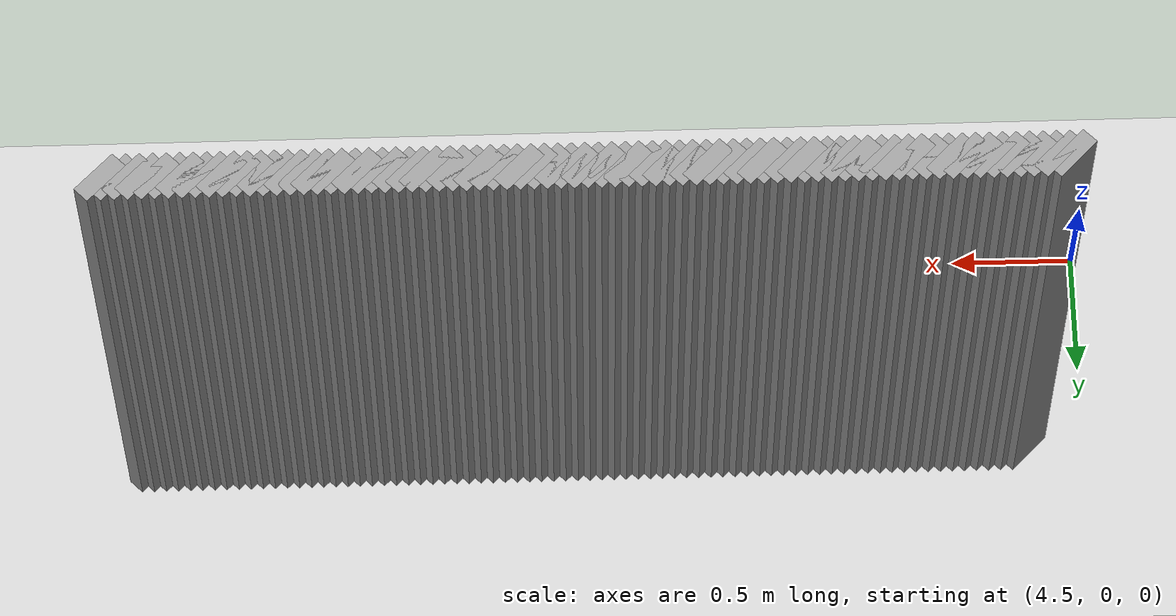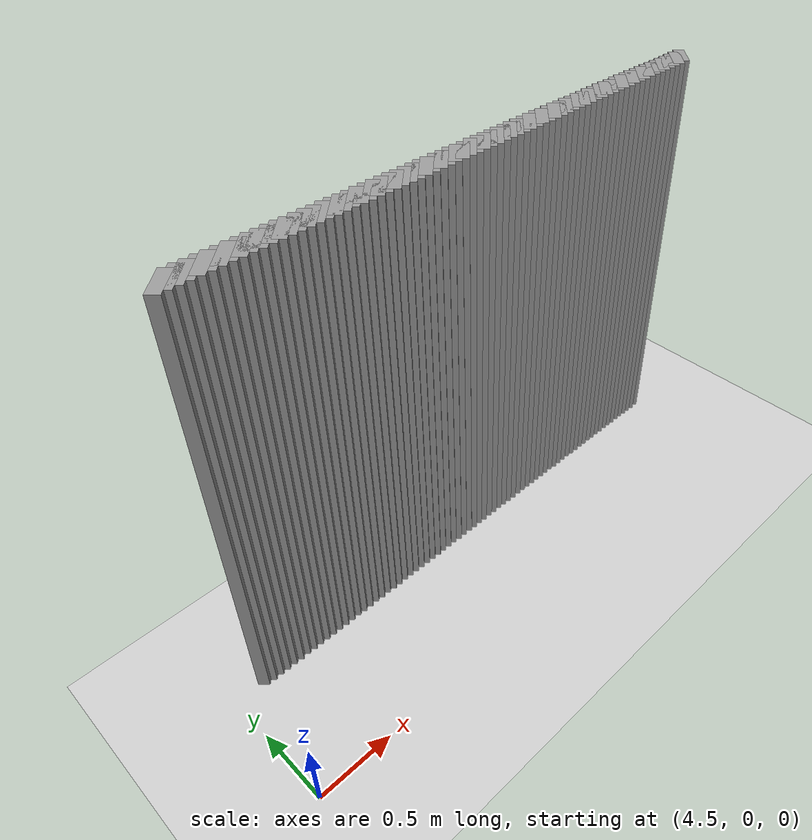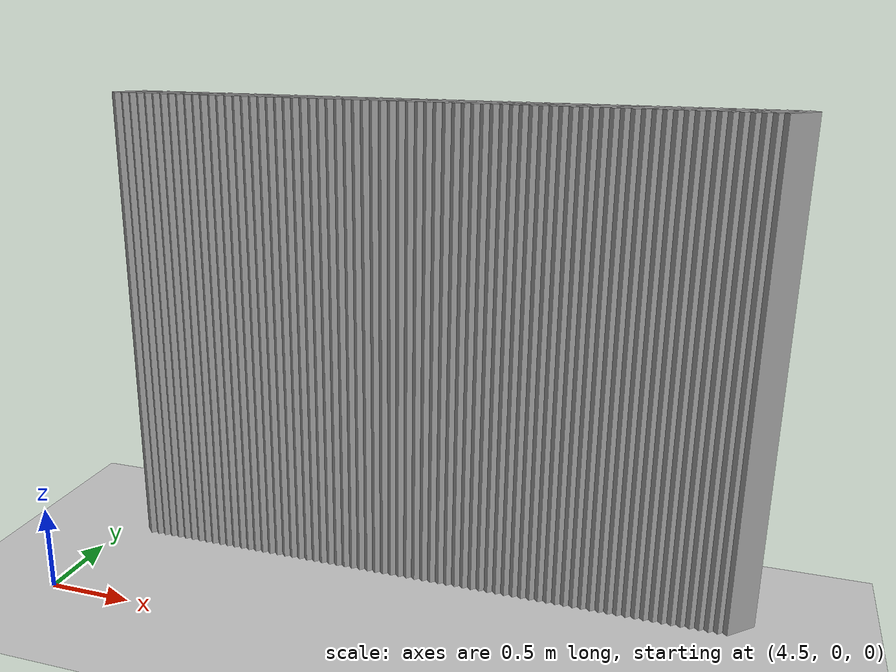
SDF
<sdf version="1.5">
 <world name="default">
  <include><uri>model://ground_plane</uri></include>
  <include><uri>model://sun</uri></include>
  <model name="grey_wall_2663">
   <static>1</static>
   <link name="link">
    <pose>4.75 0.8500000000000001  1.4 0 0 -0.7853981633974416</pose>
    <collision name="collision">
     <geometry><box><size>0.07071067811865529 .2  2.8</size></box></geometry>
    </collision>
    <visual name="visual">
     <cast_shadows>0</cast_shadows>
     <geometry><box><size>0.07071067811865529 .2  2.8</size></box></geometry>
     <material>
      <script>
       <uri>model://grey_wall/materials/scripts</uri>
       <uri>model://grey_wall/materials/textures</uri>
       <name>vrc/grey_wall</name>
      </script>
     </material>
    </visual>
   </link>
  </model>
  <model name="grey_wall_2664">
   <static>1</static>
   <link name="link">
    <pose>4.800000000000001 0.8500000000000001  1.4 0 0 -0.7853981633974416</pose>
    <collision name="collision">
     <geometry><box><size>0.07071067811865529 .2  2.8</size></box></geometry>
    </collision>
    <visual name="visual">
     <cast_shadows>0</cast_shadows>
     <geometry><box><size>0.07071067811865529 .2  2.8</size></box></geometry>
     <material>
      <script>
       <uri>model://grey_wall/materials/scripts</uri>
       <uri>model://grey_wall/materials/textures</uri>
       <name>vrc/grey_wall</name>
      </script>
     </material>
    </visual>
   </link>
  </model>
  <model name="grey_wall_2665">
   <static>1</static>
   <link name="link">
    <pose>4.8500000000000005 0.8500000000000001  1.4 0 0 -0.7853981633974416</pose>
    <collision name="collision">
     <geometry><box><size>0.07071067811865529 .2  2.8</size></box></geometry>
    </collision>
    <visual name="visual">
     <cast_shadows>0</cast_shadows>
     <geometry><box><size>0.07071067811865529 .2  2.8</size></box></geometry>
     <material>
      <script>
       <uri>model://grey_wall/materials/scripts</uri>
       <uri>model://grey_wall/materials/textures</uri>
       <name>vrc/grey_wall</name>
      </script>
     </material>
    </visual>
   </link>
  </model>
  <model name="grey_wall_2666">
   <static>1</static>
   <link name="link">
    <pose>4.9 0.8500000000000001  1.4 0 0 -0.7853981633974416</pose>
    <collision name="collision">
     <geometry><box><size>0.07071067811865529 .2  2.8</size></box></geometry>
    </collision>
    <visual name="visual">
     <cast_shadows>0</cast_shadows>
     <geometry><box><size>0.07071067811865529 .2  2.8</size></box></geometry>
     <material>
      <script>
       <uri>model://grey_wall/materials/scripts</uri>
       <uri>model://grey_wall/materials/textures</uri>
       <name>vrc/grey_wall</name>
      </script>
     </material>
    </visual>
   </link>
  </model>
  <model name="grey_wall_2667">
   <static>1</static>
   <link name="link">
    <pose>4.95 0.8500000000000001  1.4 0 0 -0.7853981633974416</pose>
    <collision name="collision">
     <geometry><box><size>0.07071067811865529 .2  2.8</size></box></geometry>
    </collision>
    <visual name="visual">
     <cast_shadows>0</cast_shadows>
     <geometry><box><size>0.07071067811865529 .2  2.8</size></box></geometry>
     <material>
      <script>
       <uri>model://grey_wall/materials/scripts</uri>
       <uri>model://grey_wall/materials/textures</uri>
       <name>vrc/grey_wall</name>
      </script>
     </material>
    </visual>
   </link>
  </model>
  <model name="grey_wall_2668">
   <static>1</static>
   <link name="link">
    <pose>5.0 0.8500000000000001  1.4 0 0 -0.7853981633974416</pose>
    <collision name="collision">
     <geometry><box><size>0.07071067811865529 .2  2.8</size></box></geometry>
    </collision>
    <visual name="visual">
     <cast_shadows>0</cast_shadows>
     <geometry><box><size>0.07071067811865529 .2  2.8</size></box></geometry>
     <material>
      <script>
       <uri>model://grey_wall/materials/scripts</uri>
       <uri>model://grey_wall/materials/textures</uri>
       <name>vrc/grey_wall</name>
      </script>
     </material>
    </visual>
   </link>
  </model>
  <model name="grey_wall_2669">
   <static>1</static>
   <link name="link">
    <pose>5.050000000000001 0.8500000000000001  1.4 0 0 -0.7853981633974416</pose>
    <collision name="collision">
     <geometry><box><size>0.07071067811865529 .2  2.8</size></box></geometry>
    </collision>
    <visual name="visual">
     <cast_shadows>0</cast_shadows>
     <geometry><box><size>0.07071067811865529 .2  2.8</size></box></geometry>
     <material>
      <script>
       <uri>model://grey_wall/materials/scripts</uri>
       <uri>model://grey_wall/materials/textures</uri>
       <name>vrc/grey_wall</name>
      </script>
     </material>
    </visual>
   </link>
  </model>
  <model name="grey_wall_2670">
   <static>1</static>
   <link name="link">
    <pose>5.1000000000000005 0.8500000000000001  1.4 0 0 -0.7853981633974416</pose>
    <collision name="collision">
     <geometry><box><size>0.07071067811865529 .2  2.8</size></box></geometry>
    </collision>
    <visual name="visual">
     <cast_shadows>0</cast_shadows>
     <geometry><box><size>0.07071067811865529 .2  2.8</size></box></geometry>
     <material>
      <script>
       <uri>model://grey_wall/materials/scripts</uri>
       <uri>model://grey_wall/materials/textures</uri>
       <name>vrc/grey_wall</name>
      </script>
     </material>
    </visual>
   </link>
  </model>
  <model name="grey_wall_2671">
   <static>1</static>
   <link name="link">
    <pose>5.15 0.8500000000000001  1.4 0 0 -0.7853981633974416</pose>
    <collision name="collision">
     <geometry><box><size>0.07071067811865529 .2  2.8</size></box></geometry>
    </collision>
    <visual name="visual">
     <cast_shadows>0</cast_shadows>
     <geometry><box><size>0.07071067811865529 .2  2.8</size></box></geometry>
     <material>
      <script>
       <uri>model://grey_wall/materials/scripts</uri>
       <uri>model://grey_wall/materials/textures</uri>
       <name>vrc/grey_wall</name>
      </script>
     </material>
    </visual>
   </link>
  </model>
  <model name="grey_wall_2672">
   <static>1</static>
   <link name="link">
    <pose>5.2 0.8500000000000001  1.4 0 0 -0.7853981633974416</pose>
    <collision name="collision">
     <geometry><box><size>0.07071067811865529 .2  2.8</size></box></geometry>
    </collision>
    <visual name="visual">
     <cast_shadows>0</cast_shadows>
     <geometry><box><size>0.07071067811865529 .2  2.8</size></box></geometry>
     <material>
      <script>
       <uri>model://grey_wall/materials/scripts</uri>
       <uri>model://grey_wall/materials/textures</uri>
       <name>vrc/grey_wall</name>
      </script>
     </material>
    </visual>
   </link>
  </model>
  <model name="grey_wall_2673">
   <static>1</static>
   <link name="link">
    <pose>5.25 0.8500000000000001  1.4 0 0 -0.7853981633974416</pose>
    <collision name="collision">
     <geometry><box><size>0.07071067811865529 .2  2.8</size></box></geometry>
    </collision>
    <visual name="visual">
     <cast_shadows>0</cast_shadows>
     <geometry><box><size>0.07071067811865529 .2  2.8</size></box></geometry>
     <material>
      <script>
       <uri>model://grey_wall/materials/scripts</uri>
       <uri>model://grey_wall/materials/textures</uri>
       <name>vrc/grey_wall</name>
      </script>
     </material>
    </visual>
   </link>
  </model>
  <model name="grey_wall_2674">
   <static>1</static>
   <link name="link">
    <pose>5.300000000000001 0.8500000000000001  1.4 0 0 -0.7853981633974416</pose>
    <collision name="collision">
     <geometry><box><size>0.07071067811865529 .2  2.8</size></box></geometry>
    </collision>
    <visual name="visual">
     <cast_shadows>0</cast_shadows>
     <geometry><box><size>0.07071067811865529 .2  2.8</size></box></geometry>
     <material>
      <script>
       <uri>model://grey_wall/materials/scripts</uri>
       <uri>model://grey_wall/materials/textures</uri>
       <name>vrc/grey_wall</name>
      </script>
     </material>
    </visual>
   </link>
  </model>
  <model name="grey_wall_2675">
   <static>1</static>
   <link name="link">
    <pose>5.3500000000000005 0.8500000000000001  1.4 0 0 -0.7853981633974416</pose>
    <collision name="collision">
     <geometry><box><size>0.07071067811865529 .2  2.8</size></box></geometry>
    </collision>
    <visual name="visual">
     <cast_shadows>0</cast_shadows>
     <geometry><box><size>0.07071067811865529 .2  2.8</size></box></geometry>
     <material>
      <script>
       <uri>model://grey_wall/materials/scripts</uri>
       <uri>model://grey_wall/materials/textures</uri>
       <name>vrc/grey_wall</name>
      </script>
     </material>
    </visual>
   </link>
  </model>
  <model name="grey_wall_2676">
   <static>1</static>
   <link name="link">
    <pose>5.4 0.8500000000000001  1.4 0 0 -0.7853981633974416</pose>
    <collision name="collision">
     <geometry><box><size>0.07071067811865529 .2  2.8</size></box></geometry>
    </collision>
    <visual name="visual">
     <cast_shadows>0</cast_shadows>
     <geometry><box><size>0.07071067811865529 .2  2.8</size></box></geometry>
     <material>
      <script>
       <uri>model://grey_wall/materials/scripts</uri>
       <uri>model://grey_wall/materials/textures</uri>
       <name>vrc/grey_wall</name>
      </script>
     </material>
    </visual>
   </link>
  </model>
  <model name="grey_wall_2677">
   <static>1</static>
   <link name="link">
    <pose>5.45 0.8500000000000001  1.4 0 0 -0.7853981633974416</pose>
    <collision name="collision">
     <geometry><box><size>0.07071067811865529 .2  2.8</size></box></geometry>
    </collision>
    <visual name="visual">
     <cast_shadows>0</cast_shadows>
     <geometry><box><size>0.07071067811865529 .2  2.8</size></box></geometry>
     <material>
      <script>
       <uri>model://grey_wall/materials/scripts</uri>
       <uri>model://grey_wall/materials/textures</uri>
       <name>vrc/grey_wall</name>
      </script>
     </material>
    </visual>
   </link>
  </model>
  <model name="grey_wall_2678">
   <static>1</static>
   <link name="link">
    <pose>5.5 0.8500000000000001  1.4 0 0 -0.7853981633974416</pose>
    <collision name="collision">
     <geometry><box><size>0.07071067811865529 .2  2.8</size></box></geometry>
    </collision>
    <visual name="visual">
     <cast_shadows>0</cast_shadows>
     <geometry><box><size>0.07071067811865529 .2  2.8</size></box></geometry>
     <material>
      <script>
       <uri>model://grey_wall/materials/scripts</uri>
       <uri>model://grey_wall/materials/textures</uri>
       <name>vrc/grey_wall</name>
      </script>
     </material>
    </visual>
   </link>
  </model>
  <model name="grey_wall_2679">
   <static>1</static>
   <link name="link">
    <pose>5.550000000000001 0.8500000000000001  1.4 0 0 -0.7853981633974416</pose>
    <collision name="collision">
     <geometry><box><size>0.07071067811865529 .2  2.8</size></box></geometry>
    </collision>
    <visual name="visual">
     <cast_shadows>0</cast_shadows>
     <geometry><box><size>0.07071067811865529 .2  2.8</size></box></geometry>
     <material>
      <script>
       <uri>model://grey_wall/materials/scripts</uri>
       <uri>model://grey_wall/materials/textures</uri>
       <name>vrc/grey_wall</name>
      </script>
     </material>
    </visual>
   </link>
  </model>
  <model name="grey_wall_2680">
   <static>1</static>
   <link name="link">
    <pose>5.6000000000000005 0.8500000000000001  1.4 0 0 -0.7853981633974416</pose>
    <collision name="collision">
     <geometry><box><size>0.07071067811865529 .2  2.8</size></box></geometry>
    </collision>
    <visual name="visual">
     <cast_shadows>0</cast_shadows>
     <geometry><box><size>0.07071067811865529 .2  2.8</size></box></geometry>
     <material>
      <script>
       <uri>model://grey_wall/materials/scripts</uri>
       <uri>model://grey_wall/materials/textures</uri>
       <name>vrc/grey_wall</name>
      </script>
     </material>
    </visual>
   </link>
  </model>
  <model name="grey_wall_2681">
   <static>1</static>
   <link name="link">
    <pose>5.65 0.8500000000000001  1.4 0 0 -0.7853981633974416</pose>
    <collision name="collision">
     <geometry><box><size>0.07071067811865529 .2  2.8</size></box></geometry>
    </collision>
    <visual name="visual">
     <cast_shadows>0</cast_shadows>
     <geometry><box><size>0.07071067811865529 .2  2.8</size></box></geometry>
     <material>
      <script>
       <uri>model://grey_wall/materials/scripts</uri>
       <uri>model://grey_wall/materials/textures</uri>
       <name>vrc/grey_wall</name>
      </script>
     </material>
    </visual>
   </link>
  </model>
  <model name="grey_wall_2682">
   <static>1</static>
   <link name="link">
    <pose>5.7 0.8500000000000001  1.4 0 0 -0.7853981633974416</pose>
    <collision name="collision">
     <geometry><box><size>0.07071067811865529 .2  2.8</size></box></geometry>
    </collision>
    <visual name="visual">
     <cast_shadows>0</cast_shadows>
     <geometry><box><size>0.07071067811865529 .2  2.8</size></box></geometry>
     <material>
      <script>
       <uri>model://grey_wall/materials/scripts</uri>
       <uri>model://grey_wall/materials/textures</uri>
       <name>vrc/grey_wall</name>
      </script>
     </material>
    </visual>
   </link>
  </model>
  <model name="grey_wall_2683">
   <static>1</static>
   <link name="link">
    <pose>5.75 0.8500000000000001  1.4 0 0 -0.7853981633974416</pose>
    <collision name="collision">
     <geometry><box><size>0.07071067811865529 .2  2.8</size></box></geometry>
    </collision>
    <visual name="visual">
     <cast_shadows>0</cast_shadows>
     <geometry><box><size>0.07071067811865529 .2  2.8</size></box></geometry>
     <material>
      <script>
       <uri>model://grey_wall/materials/scripts</uri>
       <uri>model://grey_wall/materials/textures</uri>
       <name>vrc/grey_wall</name>
      </script>
     </material>
    </visual>
   </link>
  </model>
  <model name="grey_wall_2684">
   <static>1</static>
   <link name="link">
    <pose>5.800000000000001 0.8500000000000001  1.4 0 0 -0.7853981633974416</pose>
    <collision name="collision">
     <geometry><box><size>0.07071067811865529 .2  2.8</size></box></geometry>
    </collision>
    <visual name="visual">
     <cast_shadows>0</cast_shadows>
     <geometry><box><size>0.07071067811865529 .2  2.8</size></box></geometry>
     <material>
      <script>
       <uri>model://grey_wall/materials/scripts</uri>
       <uri>model://grey_wall/materials/textures</uri>
       <name>vrc/grey_wall</name>
      </script>
     </material>
    </visual>
   </link>
  </model>
  <model name="grey_wall_2685">
   <static>1</static>
   <link name="link">
    <pose>5.8500000000000005 0.8500000000000001  1.4 0 0 -0.7853981633974416</pose>
    <collision name="collision">
     <geometry><box><size>0.07071067811865529 .2  2.8</size></box></geometry>
    </collision>
    <visual name="visual">
     <cast_shadows>0</cast_shadows>
     <geometry><box><size>0.07071067811865529 .2  2.8</size></box></geometry>
     <material>
      <script>
       <uri>model://grey_wall/materials/scripts</uri>
       <uri>model://grey_wall/materials/textures</uri>
       <name>vrc/grey_wall</name>
      </script>
     </material>
    </visual>
   </link>
  </model>
  <model name="grey_wall_2686">
   <static>1</static>
   <link name="link">
    <pose>5.9 0.8500000000000001  1.4 0 0 -0.7853981633974416</pose>
    <collision name="collision">
     <geometry><box><size>0.07071067811865529 .2  2.8</size></box></geometry>
    </collision>
    <visual name="visual">
     <cast_shadows>0</cast_shadows>
     <geometry><box><size>0.07071067811865529 .2  2.8</size></box></geometry>
     <material>
      <script>
       <uri>model://grey_wall/materials/scripts</uri>
       <uri>model://grey_wall/materials/textures</uri>
       <name>vrc/grey_wall</name>
      </script>
     </material>
    </visual>
   </link>
  </model>
  <model name="grey_wall_2687">
   <static>1</static>
   <link name="link">
    <pose>5.95 0.8500000000000001  1.4 0 0 -0.7853981633974416</pose>
    <collision name="collision">
     <geometry><box><size>0.07071067811865529 .2  2.8</size></box></geometry>
    </collision>
    <visual name="visual">
     <cast_shadows>0</cast_shadows>
     <geometry><box><size>0.07071067811865529 .2  2.8</size></box></geometry>
     <material>
      <script>
       <uri>model://grey_wall/materials/scripts</uri>
       <uri>model://grey_wall/materials/textures</uri>
       <name>vrc/grey_wall</name>
      </script>
     </material>
    </visual>
   </link>
  </model>
  <model name="grey_wall_2688">
   <static>1</static>
   <link name="link">
    <pose>6.0 0.8500000000000001  1.4 0 0 -0.7853981633974416</pose>
    <collision name="collision">
     <geometry><box><size>0.07071067811865529 .2  2.8</size></box></geometry>
    </collision>
    <visual name="visual">
     <cast_shadows>0</cast_shadows>
     <geometry><box><size>0.07071067811865529 .2  2.8</size></box></geometry>
     <material>
      <script>
       <uri>model://grey_wall/materials/scripts</uri>
       <uri>model://grey_wall/materials/textures</uri>
       <name>vrc/grey_wall</name>
      </script>
     </material>
    </visual>
   </link>
  </model>
  <model name="grey_wall_2689">
   <static>1</static>
   <link name="link">
    <pose>6.050000000000001 0.8500000000000001  1.4 0 0 -0.7853981633974416</pose>
    <collision name="collision">
     <geometry><box><size>0.07071067811865529 .2  2.8</size></box></geometry>
    </collision>
    <visual name="visual">
     <cast_shadows>0</cast_shadows>
     <geometry><box><size>0.07071067811865529 .2  2.8</size></box></geometry>
     <material>
      <script>
       <uri>model://grey_wall/materials/scripts</uri>
       <uri>model://grey_wall/materials/textures</uri>
       <name>vrc/grey_wall</name>
      </script>
     </material>
    </visual>
   </link>
  </model>
  <model name="grey_wall_2690">
   <static>1</static>
   <link name="link">
    <pose>6.1000000000000005 0.8500000000000001  1.4 0 0 -0.7853981633974416</pose>
    <collision name="collision">
     <geometry><box><size>0.07071067811865529 .2  2.8</size></box></geometry>
    </collision>
    <visual name="visual">
     <cast_shadows>0</cast_shadows>
     <geometry><box><size>0.07071067811865529 .2  2.8</size></box></geometry>
     <material>
      <script>
       <uri>model://grey_wall/materials/scripts</uri>
       <uri>model://grey_wall/materials/textures</uri>
       <name>vrc/grey_wall</name>
      </script>
     </material>
    </visual>
   </link>
  </model>
  <model name="grey_wall_2691">
   <static>1</static>
   <link name="link">
    <pose>6.15 0.8500000000000001  1.4 0 0 -0.7853981633974416</pose>
    <collision name="collision">
     <geometry><box><size>0.07071067811865529 .2  2.8</size></box></geometry>
    </collision>
    <visual name="visual">
     <cast_shadows>0</cast_shadows>
     <geometry><box><size>0.07071067811865529 .2  2.8</size></box></geometry>
     <material>
      <script>
       <uri>model://grey_wall/materials/scripts</uri>
       <uri>model://grey_wall/materials/textures</uri>
       <name>vrc/grey_wall</name>
      </script>
     </material>
    </visual>
   </link>
  </model>
  <model name="grey_wall_2692">
   <static>1</static>
   <link name="link">
    <pose>6.2 0.8500000000000001  1.4 0 0 -0.7853981633974416</pose>
    <collision name="collision">
     <geometry><box><size>0.07071067811865529 .2  2.8</size></box></geometry>
    </collision>
    <visual name="visual">
     <cast_shadows>0</cast_shadows>
     <geometry><box><size>0.07071067811865529 .2  2.8</size></box></geometry>
     <material>
      <script>
       <uri>model://grey_wall/materials/scripts</uri>
       <uri>model://grey_wall/materials/textures</uri>
       <name>vrc/grey_wall</name>
      </script>
     </material>
    </visual>
   </link>
  </model>
  <model name="grey_wall_2693">
   <static>1</static>
   <link name="link">
    <pose>6.25 0.8500000000000001  1.4 0 0 -0.7853981633974416</pose>
    <collision name="collision">
     <geometry><box><size>0.07071067811865529 .2  2.8</size></box></geometry>
    </collision>
    <visual name="visual">
     <cast_shadows>0</cast_shadows>
     <geometry><box><size>0.07071067811865529 .2  2.8</size></box></geometry>
     <material>
      <script>
       <uri>model://grey_wall/materials/scripts</uri>
       <uri>model://grey_wall/materials/textures</uri>
       <name>vrc/grey_wall</name>
      </script>
     </material>
    </visual>
   </link>
  </model>
  <model name="grey_wall_2694">
   <static>1</static>
   <link name="link">
    <pose>6.300000000000001 0.8500000000000001  1.4 0 0 -0.7853981633974416</pose>
    <collision name="collision">
     <geometry><box><size>0.07071067811865529 .2  2.8</size></box></geometry>
    </collision>
    <visual name="visual">
     <cast_shadows>0</cast_shadows>
     <geometry><box><size>0.07071067811865529 .2  2.8</size></box></geometry>
     <material>
      <script>
       <uri>model://grey_wall/materials/scripts</uri>
       <uri>model://grey_wall/materials/textures</uri>
       <name>vrc/grey_wall</name>
      </script>
     </material>
    </visual>
   </link>
  </model>
  <model name="grey_wall_2695">
   <static>1</static>
   <link name="link">
    <pose>6.3500000000000005 0.8500000000000001  1.4 0 0 -0.7853981633974416</pose>
    <collision name="collision">
     <geometry><box><size>0.07071067811865529 .2  2.8</size></box></geometry>
    </collision>
    <visual name="visual">
     <cast_shadows>0</cast_shadows>
     <geometry><box><size>0.07071067811865529 .2  2.8</size></box></geometry>
     <material>
      <script>
       <uri>model://grey_wall/materials/scripts</uri>
       <uri>model://grey_wall/materials/textures</uri>
       <name>vrc/grey_wall</name>
      </script>
     </material>
    </visual>
   </link>
  </model>
  <model name="grey_wall_2696">
   <static>1</static>
   <link name="link">
    <pose>6.4 0.8500000000000001  1.4 0 0 -0.7853981633974416</pose>
    <collision name="collision">
     <geometry><box><size>0.07071067811865529 .2  2.8</size></box></geometry>
    </collision>
    <visual name="visual">
     <cast_shadows>0</cast_shadows>
     <geometry><box><size>0.07071067811865529 .2  2.8</size></box></geometry>
     <material>
      <script>
       <uri>model://grey_wall/materials/scripts</uri>
       <uri>model://grey_wall/materials/textures</uri>
       <name>vrc/grey_wall</name>
      </script>
     </material>
    </visual>
   </link>
  </model>
  <model name="grey_wall_2697">
   <static>1</static>
   <link name="link">
    <pose>6.45 0.8500000000000001  1.4 0 0 -0.7853981633974416</pose>
    <collision name="collision">
     <geometry><box><size>0.07071067811865529 .2  2.8</size></box></geometry>
    </collision>
    <visual name="visual">
     <cast_shadows>0</cast_shadows>
     <geometry><box><size>0.07071067811865529 .2  2.8</size></box></geometry>
     <material>
      <script>
       <uri>model://grey_wall/materials/scripts</uri>
       <uri>model://grey_wall/materials/textures</uri>
       <name>vrc/grey_wall</name>
      </script>
     </material>
    </visual>
   </link>
  </model>
  <model name="grey_wall_2698">
   <static>1</static>
   <link name="link">
    <pose>6.5 0.8500000000000001  1.4 0 0 -0.7853981633974416</pose>
    <collision name="collision">
     <geometry><box><size>0.07071067811865529 .2  2.8</size></box></geometry>
    </collision>
    <visual name="visual">
     <cast_shadows>0</cast_shadows>
     <geometry><box><size>0.07071067811865529 .2  2.8</size></box></geometry>
     <material>
      <script>
       <uri>model://grey_wall/materials/scripts</uri>
       <uri>model://grey_wall/materials/textures</uri>
       <name>vrc/grey_wall</name>
      </script>
     </material>
    </visual>
   </link>
  </model>
  <model name="grey_wall_2699">
   <static>1</static>
   <link name="link">
    <pose>6.550000000000001 0.8500000000000001  1.4 0 0 -0.7853981633974416</pose>
    <collision name="collision">
     <geometry><box><size>0.07071067811865529 .2  2.8</size></box></geometry>
    </collision>
    <visual name="visual">
     <cast_shadows>0</cast_shadows>
     <geometry><box><size>0.07071067811865529 .2  2.8</size></box></geometry>
     <material>
      <script>
       <uri>model://grey_wall/materials/scripts</uri>
       <uri>model://grey_wall/materials/textures</uri>
       <name>vrc/grey_wall</name>
      </script>
     </material>
    </visual>
   </link>
  </model>
  <model name="grey_wall_2700">
   <static>1</static>
   <link name="link">
    <pose>6.6000000000000005 0.8500000000000001  1.4 0 0 -0.7853981633974416</pose>
    <collision name="collision">
     <geometry><box><size>0.07071067811865529 .2  2.8</size></box></geometry>
    </collision>
    <visual name="visual">
     <cast_shadows>0</cast_shadows>
     <geometry><box><size>0.07071067811865529 .2  2.8</size></box></geometry>
     <material>
      <script>
       <uri>model://grey_wall/materials/scripts</uri>
       <uri>model://grey_wall/materials/textures</uri>
       <name>vrc/grey_wall</name>
      </script>
     </material>
    </visual>
   </link>
  </model>
  <model name="grey_wall_2701">
   <static>1</static>
   <link name="link">
    <pose>6.65 0.8500000000000001  1.4 0 0 -0.7853981633974416</pose>
    <collision name="collision">
     <geometry><box><size>0.07071067811865529 .2  2.8</size></box></geometry>
    </collision>
    <visual name="visual">
     <cast_shadows>0</cast_shadows>
     <geometry><box><size>0.07071067811865529 .2  2.8</size></box></geometry>
     <material>
      <script>
       <uri>model://grey_wall/materials/scripts</uri>
       <uri>model://grey_wall/materials/textures</uri>
       <name>vrc/grey_wall</name>
      </script>
     </material>
    </visual>
   </link>
  </model>
  <model name="grey_wall_2702">
   <static>1</static>
   <link name="link">
    <pose>6.7 0.8500000000000001  1.4 0 0 -0.7853981633974416</pose>
    <collision name="collision">
     <geometry><box><size>0.07071067811865529 .2  2.8</size></box></geometry>
    </collision>
    <visual name="visual">
     <cast_shadows>0</cast_shadows>
     <geometry><box><size>0.07071067811865529 .2  2.8</size></box></geometry>
     <material>
      <script>
       <uri>model://grey_wall/materials/scripts</uri>
       <uri>model://grey_wall/materials/textures</uri>
       <name>vrc/grey_wall</name>
      </script>
     </material>
    </visual>
   </link>
  </model>
  <model name="grey_wall_2703">
   <static>1</static>
   <link name="link">
    <pose>6.75 0.8500000000000001  1.4 0 0 -0.7853981633974416</pose>
    <collision name="collision">
     <geometry><box><size>0.07071067811865529 .2  2.8</size></box></geometry>
    </collision>
    <visual name="visual">
     <cast_shadows>0</cast_shadows>
     <geometry><box><size>0.07071067811865529 .2  2.8</size></box></geometry>
     <material>
      <script>
       <uri>model://grey_wall/materials/scripts</uri>
       <uri>model://grey_wall/materials/textures</uri>
       <name>vrc/grey_wall</name>
      </script>
     </material>
    </visual>
   </link>
  </model>
  <model name="grey_wall_2704">
   <static>1</static>
   <link name="link">
    <pose>6.800000000000001 0.8500000000000001  1.4 0 0 -0.7853981633974416</pose>
    <collision name="collision">
     <geometry><box><size>0.07071067811865529 .2  2.8</size></box></geometry>
    </collision>
    <visual name="visual">
     <cast_shadows>0</cast_shadows>
     <geometry><box><size>0.07071067811865529 .2  2.8</size></box></geometry>
     <material>
      <script>
       <uri>model://grey_wall/materials/scripts</uri>
       <uri>model://grey_wall/materials/textures</uri>
       <name>vrc/grey_wall</name>
      </script>
     </material>
    </visual>
   </link>
  </model>
  <model name="grey_wall_2705">
   <static>1</static>
   <link name="link">
    <pose>6.8500000000000005 0.8500000000000001  1.4 0 0 -0.7853981633974416</pose>
    <collision name="collision">
     <geometry><box><size>0.07071067811865529 .2  2.8</size></box></geometry>
    </collision>
    <visual name="visual">
     <cast_shadows>0</cast_shadows>
     <geometry><box><size>0.07071067811865529 .2  2.8</size></box></geometry>
     <material>
      <script>
       <uri>model://grey_wall/materials/scripts</uri>
       <uri>model://grey_wall/materials/textures</uri>
       <name>vrc/grey_wall</name>
      </script>
     </material>
    </visual>
   </link>
  </model>
  <model name="grey_wall_2706">
   <static>1</static>
   <link name="link">
    <pose>6.9 0.8500000000000001  1.4 0 0 -0.7853981633974416</pose>
    <collision name="collision">
     <geometry><box><size>0.07071067811865529 .2  2.8</size></box></geometry>
    </collision>
    <visual name="visual">
     <cast_shadows>0</cast_shadows>
     <geometry><box><size>0.07071067811865529 .2  2.8</size></box></geometry>
     <material>
      <script>
       <uri>model://grey_wall/materials/scripts</uri>
       <uri>model://grey_wall/materials/textures</uri>
       <name>vrc/grey_wall</name>
      </script>
     </material>
    </visual>
   </link>
  </model>
  <model name="grey_wall_2707">
   <static>1</static>
   <link name="link">
    <pose>6.95 0.8500000000000001  1.4 0 0 -0.7853981633974416</pose>
    <collision name="collision">
     <geometry><box><size>0.07071067811865529 .2  2.8</size></box></geometry>
    </collision>
    <visual name="visual">
     <cast_shadows>0</cast_shadows>
     <geometry><box><size>0.07071067811865529 .2  2.8</size></box></geometry>
     <material>
      <script>
       <uri>model://grey_wall/materials/scripts</uri>
       <uri>model://grey_wall/materials/textures</uri>
       <name>vrc/grey_wall</name>
      </script>
     </material>
    </visual>
   </link>
  </model>
  <model name="grey_wall_2708">
   <static>1</static>
   <link name="link">
    <pose>7.0 0.8500000000000001  1.4 0 0 -0.7853981633974416</pose>
    <collision name="collision">
     <geometry><box><size>0.07071067811865529 .2  2.8</size></box></geometry>
    </collision>
    <visual name="visual">
     <cast_shadows>0</cast_shadows>
     <geometry><box><size>0.07071067811865529 .2  2.8</size></box></geometry>
     <material>
      <script>
       <uri>model://grey_wall/materials/scripts</uri>
       <uri>model://grey_wall/materials/textures</uri>
       <name>vrc/grey_wall</name>
      </script>
     </material>
    </visual>
   </link>
  </model>
  <model name="grey_wall_2709">
   <static>1</static>
   <link name="link">
    <pose>7.050000000000001 0.8500000000000001  1.4 0 0 -0.7853981633974416</pose>
    <collision name="collision">
     <geometry><box><size>0.07071067811865529 .2  2.8</size></box></geometry>
    </collision>
    <visual name="visual">
     <cast_shadows>0</cast_shadows>
     <geometry><box><size>0.07071067811865529 .2  2.8</size></box></geometry>
     <material>
      <script>
       <uri>model://grey_wall/materials/scripts</uri>
       <uri>model://grey_wall/materials/textures</uri>
       <name>vrc/grey_wall</name>
      </script>
     </material>
    </visual>
   </link>
  </model>
  <model name="grey_wall_2710">
   <static>1</static>
   <link name="link">
    <pose>7.1000000000000005 0.8500000000000001  1.4 0 0 -0.7853981633974416</pose>
    <collision name="collision">
     <geometry><box><size>0.07071067811865529 .2  2.8</size></box></geometry>
    </collision>
    <visual name="visual">
     <cast_shadows>0</cast_shadows>
     <geometry><box><size>0.07071067811865529 .2  2.8</size></box></geometry>
     <material>
      <script>
       <uri>model://grey_wall/materials/scripts</uri>
       <uri>model://grey_wall/materials/textures</uri>
       <name>vrc/grey_wall</name>
      </script>
     </material>
    </visual>
   </link>
  </model>
  <model name="grey_wall_2711">
   <static>1</static>
   <link name="link">
    <pose>7.15 0.8500000000000001  1.4 0 0 -0.7853981633974416</pose>
    <collision name="collision">
     <geometry><box><size>0.07071067811865529 .2  2.8</size></box></geometry>
    </collision>
    <visual name="visual">
     <cast_shadows>0</cast_shadows>
     <geometry><box><size>0.07071067811865529 .2  2.8</size></box></geometry>
     <material>
      <script>
       <uri>model://grey_wall/materials/scripts</uri>
       <uri>model://grey_wall/materials/textures</uri>
       <name>vrc/grey_wall</name>
      </script>
     </material>
    </visual>
   </link>
  </model>
  <model name="grey_wall_2712">
   <static>1</static>
   <link name="link">
    <pose>7.2 0.8500000000000001  1.4 0 0 -0.7853981633974416</pose>
    <collision name="collision">
     <geometry><box><size>0.07071067811865529 .2  2.8</size></box></geometry>
    </collision>
    <visual name="visual">
     <cast_shadows>0</cast_shadows>
     <geometry><box><size>0.07071067811865529 .2  2.8</size></box></geometry>
     <material>
      <script>
       <uri>model://grey_wall/materials/scripts</uri>
       <uri>model://grey_wall/materials/textures</uri>
       <name>vrc/grey_wall</name>
      </script>
     </material>
    </visual>
   </link>
  </model>
  <model name="grey_wall_2713">
   <static>1</static>
   <link name="link">
    <pose>7.25 0.8500000000000001  1.4 0 0 -0.7853981633974416</pose>
    <collision name="collision">
     <geometry><box><size>0.07071067811865529 .2  2.8</size></box></geometry>
    </collision>
    <visual name="visual">
     <cast_shadows>0</cast_shadows>
     <geometry><box><size>0.07071067811865529 .2  2.8</size></box></geometry>
     <material>
      <script>
       <uri>model://grey_wall/materials/scripts</uri>
       <uri>model://grey_wall/materials/textures</uri>
       <name>vrc/grey_wall</name>
      </script>
     </material>
    </visual>
   </link>
  </model>
  <model name="grey_wall_2714">
   <static>1</static>
   <link name="link">
    <pose>7.300000000000001 0.8500000000000001  1.4 0 0 -0.7853981633974416</pose>
    <collision name="collision">
     <geometry><box><size>0.07071067811865529 .2  2.8</size></box></geometry>
    </collision>
    <visual name="visual">
     <cast_shadows>0</cast_shadows>
     <geometry><box><size>0.07071067811865529 .2  2.8</size></box></geometry>
     <material>
      <script>
       <uri>model://grey_wall/materials/scripts</uri>
       <uri>model://grey_wall/materials/textures</uri>
       <name>vrc/grey_wall</name>
      </script>
     </material>
    </visual>
   </link>
  </model>
  <model name="grey_wall_2715">
   <static>1</static>
   <link name="link">
    <pose>7.3500000000000005 0.8500000000000001  1.4 0 0 -0.7853981633974416</pose>
    <collision name="collision">
     <geometry><box><size>0.07071067811865529 .2  2.8</size></box></geometry>
    </collision>
    <visual name="visual">
     <cast_shadows>0</cast_shadows>
     <geometry><box><size>0.07071067811865529 .2  2.8</size></box></geometry>
     <material>
      <script>
       <uri>model://grey_wall/materials/scripts</uri>
       <uri>model://grey_wall/materials/textures</uri>
       <name>vrc/grey_wall</name>
      </script>
     </material>
    </visual>
   </link>
  </model>
  <model name="grey_wall_2716">
   <static>1</static>
   <link name="link">
    <pose>7.4 0.8500000000000001  1.4 0 0 -0.7853981633974416</pose>
    <collision name="collision">
     <geometry><box><size>0.07071067811865529 .2  2.8</size></box></geometry>
    </collision>
    <visual name="visual">
     <cast_shadows>0</cast_shadows>
     <geometry><box><size>0.07071067811865529 .2  2.8</size></box></geometry>
     <material>
      <script>
       <uri>model://grey_wall/materials/scripts</uri>
       <uri>model://grey_wall/materials/textures</uri>
       <name>vrc/grey_wall</name>
      </script>
     </material>
    </visual>
   </link>
  </model>
  <model name="grey_wall_2717">
   <static>1</static>
   <link name="link">
    <pose>7.45 0.8500000000000001  1.4 0 0 -0.7853981633974416</pose>
    <collision name="collision">
     <geometry><box><size>0.07071067811865529 .2  2.8</size></box></geometry>
    </collision>
    <visual name="visual">
     <cast_shadows>0</cast_shadows>
     <geometry><box><size>0.07071067811865529 .2  2.8</size></box></geometry>
     <material>
      <script>
       <uri>model://grey_wall/materials/scripts</uri>
       <uri>model://grey_wall/materials/textures</uri>
       <name>vrc/grey_wall</name>
      </script>
     </material>
    </visual>
   </link>
  </model>
  <model name="grey_wall_2718">
   <static>1</static>
   <link name="link">
    <pose>7.5 0.8500000000000001  1.4 0 0 -0.7853981633974416</pose>
    <collision name="collision">
     <geometry><box><size>0.07071067811865529 .2  2.8</size></box></geometry>
    </collision>
    <visual name="visual">
     <cast_shadows>0</cast_shadows>
     <geometry><box><size>0.07071067811865529 .2  2.8</size></box></geometry>
     <material>
      <script>
       <uri>model://grey_wall/materials/scripts</uri>
       <uri>model://grey_wall/materials/textures</uri>
       <name>vrc/grey_wall</name>
      </script>
     </material>
    </visual>
   </link>
  </model>
  <model name="grey_wall_2719">
   <static>1</static>
   <link name="link">
    <pose>7.550000000000001 0.8500000000000001  1.4 0 0 -0.7853981633974416</pose>
    <collision name="collision">
     <geometry><box><size>0.07071067811865529 .2  2.8</size></box></geometry>
    </collision>
    <visual name="visual">
     <cast_shadows>0</cast_shadows>
     <geometry><box><size>0.07071067811865529 .2  2.8</size></box></geometry>
     <material>
      <script>
       <uri>model://grey_wall/materials/scripts</uri>
       <uri>model://grey_wall/materials/textures</uri>
       <name>vrc/grey_wall</name>
      </script>
     </material>
    </visual>
   </link>
  </model>
  <model name="grey_wall_2720">
   <static>1</static>
   <link name="link">
    <pose>7.6000000000000005 0.8500000000000001  1.4 0 0 -0.7853981633974416</pose>
    <collision name="collision">
     <geometry><box><size>0.07071067811865529 .2  2.8</size></box></geometry>
    </collision>
    <visual name="visual">
     <cast_shadows>0</cast_shadows>
     <geometry><box><size>0.07071067811865529 .2  2.8</size></box></geometry>
     <material>
      <script>
       <uri>model://grey_wall/materials/scripts</uri>
       <uri>model://grey_wall/materials/textures</uri>
       <name>vrc/grey_wall</name>
      </script>
     </material>
    </visual>
   </link>
  </model>
  <model name="grey_wall_2721">
   <static>1</static>
   <link name="link">
    <pose>7.65 0.8500000000000001  1.4 0 0 -0.7853981633974416</pose>
    <collision name="collision">
     <geometry><box><size>0.07071067811865529 .2  2.8</size></box></geometry>
    </collision>
    <visual name="visual">
     <cast_shadows>0</cast_shadows>
     <geometry><box><size>0.07071067811865529 .2  2.8</size></box></geometry>
     <material>
      <script>
       <uri>model://grey_wall/materials/scripts</uri>
       <uri>model://grey_wall/materials/textures</uri>
       <name>vrc/grey_wall</name>
      </script>
     </material>
    </visual>
   </link>
  </model>
  <model name="grey_wall_2722">
   <static>1</static>
   <link name="link">
    <pose>7.7 0.8500000000000001  1.4 0 0 -0.7853981633974416</pose>
    <collision name="collision">
     <geometry><box><size>0.07071067811865529 .2  2.8</size></box></geometry>
    </collision>
    <visual name="visual">
     <cast_shadows>0</cast_shadows>
     <geometry><box><size>0.07071067811865529 .2  2.8</size></box></geometry>
     <material>
      <script>
       <uri>model://grey_wall/materials/scripts</uri>
       <uri>model://grey_wall/materials/textures</uri>
       <name>vrc/grey_wall</name>
      </script>
     </material>
    </visual>
   </link>
  </model>
  <model name="grey_wall_2723">
   <static>1</static>
   <link name="link">
    <pose>7.75 0.8500000000000001  1.4 0 0 -0.7853981633974416</pose>
    <collision name="collision">
     <geometry><box><size>0.07071067811865529 .2  2.8</size></box></geometry>
    </collision>
    <visual name="visual">
     <cast_shadows>0</cast_shadows>
     <geometry><box><size>0.07071067811865529 .2  2.8</size></box></geometry>
     <material>
      <script>
       <uri>model://grey_wall/materials/scripts</uri>
       <uri>model://grey_wall/materials/textures</uri>
       <name>vrc/grey_wall</name>
      </script>
     </material>
    </visual>
   </link>
  </model>
  <model name="grey_wall_2724">
   <static>1</static>
   <link name="link">
    <pose>7.800000000000001 0.8500000000000001  1.4 0 0 -0.7853981633974416</pose>
    <collision name="collision">
     <geometry><box><size>0.07071067811865529 .2  2.8</size></box></geometry>
    </collision>
    <visual name="visual">
     <cast_shadows>0</cast_shadows>
     <geometry><box><size>0.07071067811865529 .2  2.8</size></box></geometry>
     <material>
      <script>
       <uri>model://grey_wall/materials/scripts</uri>
       <uri>model://grey_wall/materials/textures</uri>
       <name>vrc/grey_wall</name>
      </script>
     </material>
    </visual>
   </link>
  </model>
  <model name="grey_wall_2725">
   <static>1</static>
   <link name="link">
    <pose>7.8500000000000005 0.8500000000000001  1.4 0 0 -0.7853981633974416</pose>
    <collision name="collision">
     <geometry><box><size>0.07071067811865529 .2  2.8</size></box></geometry>
    </collision>
    <visual name="visual">
     <cast_shadows>0</cast_shadows>
     <geometry><box><size>0.07071067811865529 .2  2.8</size></box></geometry>
     <material>
      <script>
       <uri>model://grey_wall/materials/scripts</uri>
       <uri>model://grey_wall/materials/textures</uri>
       <name>vrc/grey_wall</name>
      </script>
     </material>
    </visual>
   </link>
  </model>
  <model name="grey_wall_2726">
   <static>1</static>
   <link name="link">
    <pose>7.9 0.8500000000000001  1.4 0 0 -0.7853981633974416</pose>
    <collision name="collision">
     <geometry><box><size>0.07071067811865529 .2  2.8</size></box></geometry>
    </collision>
    <visual name="visual">
     <cast_shadows>0</cast_shadows>
     <geometry><box><size>0.07071067811865529 .2  2.8</size></box></geometry>
     <material>
      <script>
       <uri>model://grey_wall/materials/scripts</uri>
       <uri>model://grey_wall/materials/textures</uri>
       <name>vrc/grey_wall</name>
      </script>
     </material>
    </visual>
   </link>
  </model>
  <model name="grey_wall_2727">
   <static>1</static>
   <link name="link">
    <pose>7.95 0.8500000000000001  1.4 0 0 -0.7853981633974416</pose>
    <collision name="collision">
     <geometry><box><size>0.07071067811865529 .2  2.8</size></box></geometry>
    </collision>
    <visual name="visual">
     <cast_shadows>0</cast_shadows>
     <geometry><box><size>0.07071067811865529 .2  2.8</size></box></geometry>
     <material>
      <script>
       <uri>model://grey_wall/materials/scripts</uri>
       <uri>model://grey_wall/materials/textures</uri>
       <name>vrc/grey_wall</name>
      </script>
     </material>
    </visual>
   </link>
  </model>
  <model name="grey_wall_2728">
   <static>1</static>
   <link name="link">
    <pose>8.0 0.8500000000000001  1.4 0 0 -0.7853981633974416</pose>
    <collision name="collision">
     <geometry><box><size>0.07071067811865529 .2  2.8</size></box></geometry>
    </collision>
    <visual name="visual">
     <cast_shadows>0</cast_shadows>
     <geometry><box><size>0.07071067811865529 .2  2.8</size></box></geometry>
     <material>
      <script>
       <uri>model://grey_wall/materials/scripts</uri>
       <uri>model://grey_wall/materials/textures</uri>
       <name>vrc/grey_wall</name>
      </script>
     </material>
    </visual>
   </link>
  </model>
  <model name="grey_wall_2729">
   <static>1</static>
   <link name="link">
    <pose>8.05 0.8500000000000001  1.4 0 0 -0.7853981633974416</pose>
    <collision name="collision">
     <geometry><box><size>0.07071067811865529 .2  2.8</size></box></geometry>
    </collision>
    <visual name="visual">
     <cast_shadows>0</cast_shadows>
     <geometry><box><size>0.07071067811865529 .2  2.8</size></box></geometry>
     <material>
      <script>
       <uri>model://grey_wall/materials/scripts</uri>
       <uri>model://grey_wall/materials/textures</uri>
       <name>vrc/grey_wall</name>
      </script>
     </material>
    </visual>
   </link>
  </model>
  <model name="grey_wall_2730">
   <static>1</static>
   <link name="link">
    <pose>8.1 0.8500000000000001  1.4 0 0 -0.7853981633974416</pose>
    <collision name="collision">
     <geometry><box><size>0.07071067811865529 .2  2.8</size></box></geometry>
    </collision>
    <visual name="visual">
     <cast_shadows>0</cast_shadows>
     <geometry><box><size>0.07071067811865529 .2  2.8</size></box></geometry>
     <material>
      <script>
       <uri>model://grey_wall/materials/scripts</uri>
       <uri>model://grey_wall/materials/textures</uri>
       <name>vrc/grey_wall</name>
      </script>
     </material>
    </visual>
   </link>
  </model>
  <model name="grey_wall_2731">
   <static>1</static>
   <link name="link">
    <pose>8.15 0.8500000000000001  1.4 0 0 -0.7853981633974416</pose>
    <collision name="collision">
     <geometry><box><size>0.07071067811865529 .2  2.8</size></box></geometry>
    </collision>
    <visual name="visual">
     <cast_shadows>0</cast_shadows>
     <geometry><box><size>0.07071067811865529 .2  2.8</size></box></geometry>
     <material>
      <script>
       <uri>model://grey_wall/materials/scripts</uri>
       <uri>model://grey_wall/materials/textures</uri>
       <name>vrc/grey_wall</name>
      </script>
     </material>
    </visual>
   </link>
  </model>
  <model name="grey_wall_2732">
   <static>1</static>
   <link name="link">
    <pose>8.200000000000001 0.8500000000000001  1.4 0 0 -0.7853981633974416</pose>
    <collision name="collision">
     <geometry><box><size>0.07071067811865529 .2  2.8</size></box></geometry>
    </collision>
    <visual name="visual">
     <cast_shadows>0</cast_shadows>
     <geometry><box><size>0.07071067811865529 .2  2.8</size></box></geometry>
     <material>
      <script>
       <uri>model://grey_wall/materials/scripts</uri>
       <uri>model://grey_wall/materials/textures</uri>
       <name>vrc/grey_wall</name>
      </script>
     </material>
    </visual>
   </link>
  </model>
  <model name="grey_wall_2733">
   <static>1</static>
   <link name="link">
    <pose>8.25 0.8500000000000001  1.4 0 0 -0.7853981633974416</pose>
    <collision name="collision">
     <geometry><box><size>0.07071067811865529 .2  2.8</size></box></geometry>
    </collision>
    <visual name="visual">
     <cast_shadows>0</cast_shadows>
     <geometry><box><size>0.07071067811865529 .2  2.8</size></box></geometry>
     <material>
      <script>
       <uri>model://grey_wall/materials/scripts</uri>
       <uri>model://grey_wall/materials/textures</uri>
       <name>vrc/grey_wall</name>
      </script>
     </material>
    </visual>
   </link>
  </model>
  <model name="grey_wall_2734">
   <static>1</static>
   <link name="link">
    <pose>8.3 0.8500000000000001  1.4 0 0 -0.7853981633974416</pose>
    <collision name="collision">
     <geometry><box><size>0.07071067811865529 .2  2.8</size></box></geometry>
    </collision>
    <visual name="visual">
     <cast_shadows>0</cast_shadows>
     <geometry><box><size>0.07071067811865529 .2  2.8</size></box></geometry>
     <material>
      <script>
       <uri>model://grey_wall/materials/scripts</uri>
       <uri>model://grey_wall/materials/textures</uri>
       <name>vrc/grey_wall</name>
      </script>
     </material>
    </visual>
   </link>
  </model>
  <model name="grey_wall_2735">
   <static>1</static>
   <link name="link">
    <pose>8.35 0.8500000000000001  1.4 0 0 -0.7853981633974416</pose>
    <collision name="collision">
     <geometry><box><size>0.07071067811865529 .2  2.8</size></box></geometry>
    </collision>
    <visual name="visual">
     <cast_shadows>0</cast_shadows>
     <geometry><box><size>0.07071067811865529 .2  2.8</size></box></geometry>
     <material>
      <script>
       <uri>model://grey_wall/materials/scripts</uri>
       <uri>model://grey_wall/materials/textures</uri>
       <name>vrc/grey_wall</name>
      </script>
     </material>
    </visual>
   </link>
  </model>
 </world>
</sdf>
